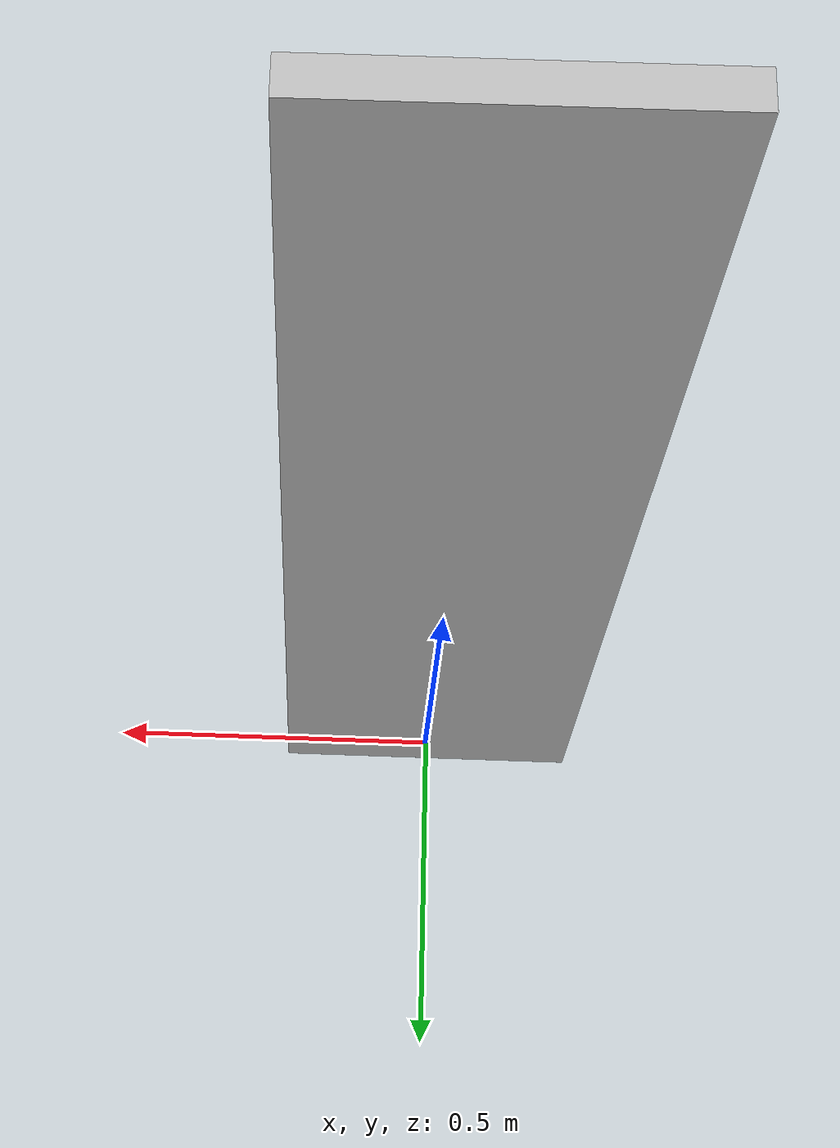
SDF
<?xml version="1.0" ?>
<sdf version="1.6">
  <model name="person_adult_2">
    <static>true</static>
    <link name="link">
      <gravity>false</gravity>
      <pose>0 0 0.825 0 0 0</pose>
      <visual name="visual">
        <geometry>
          <box><size>0.45 0.05 1.65</size></box>
        </geometry>
        <material>
          <script>
            <uri>model://person_adult_2/materials/scripts</uri>
            <uri>model://person_adult_2/materials/textures</uri>
            <name>PersonAdult2/Diffuse</name>
          </script>
        </material>
      </visual>
    </link>
  </model>
</sdf>
